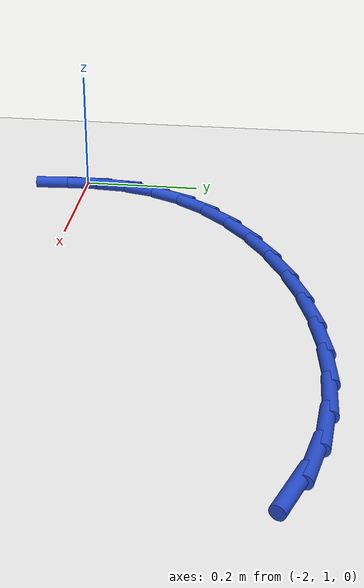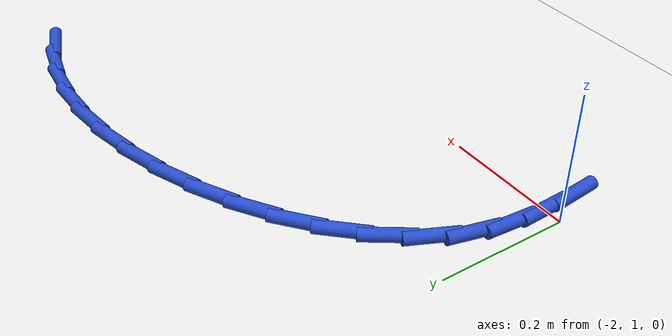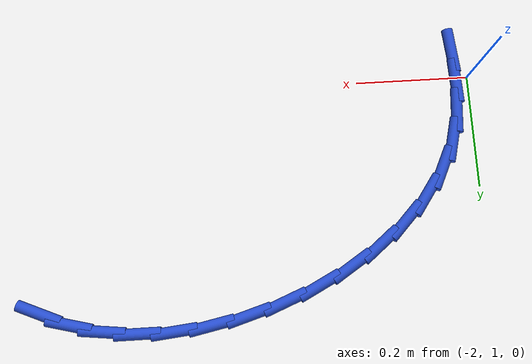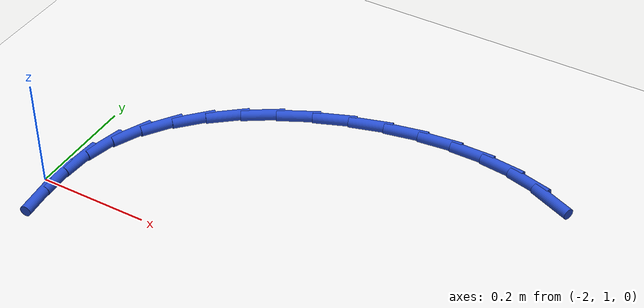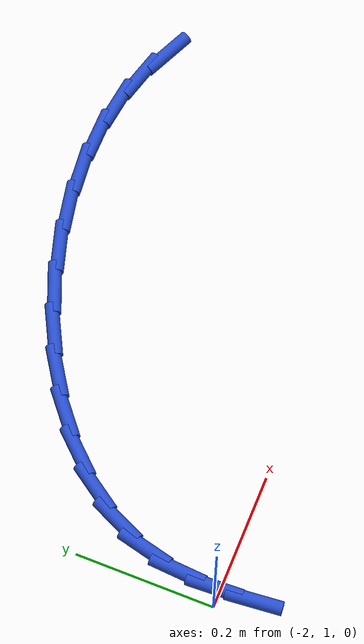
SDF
<sdf version="1.6">
 <world name="default">
  <model name="ground_plane">
   <static>1</static>
   <link name="link">
    <collision name="collision">
     <geometry><plane><normal>0 0 1</normal><size>100 100</size></plane></geometry>
     <surface><friction><ode><mu>100</mu><mu2>50</mu2></ode></friction></surface>
    </collision>
    <visual name="visual">
     <cast_shadows>0</cast_shadows>
     <geometry><plane><normal>0 0 1</normal><size>100 100</size></plane></geometry>
     <material>
      <script><uri>file://media/materials/scripts/gazebo.material</uri><name>Gazebo/WhiteGlow</name></script>
     </material>
    </visual>
   </link>
  </model>
  <model name="line">
   <link name="link_35">
    <pose>-1.228881268460256 1.3752616799969937 0.01 0 1.57 -0.41180955839088135</pose>
    <collision name="collision">
     <geometry><cylinder><radius>0.01</radius><length>0.08</length></cylinder></geometry>
    </collision>
    <visual name="visual">
     <material>
      <script><name>Gazebo/Blue</name><uri>file://media/materials/scripts/gazebo.material</uri></script>
     </material>
     <geometry><cylinder><radius>0.01</radius><length>0.08</length></cylinder></geometry>
    </visual>
   </link>
   <link name="link_36">
    <pose>-1.2794076821355773 1.3973308238242974 0.01 0 1.57 -0.2529647030927741</pose>
    <collision name="collision">
     <geometry><cylinder><radius>0.01</radius><length>0.08</length></cylinder></geometry>
    </collision>
    <visual name="visual">
     <material>
      <script><name>Gazebo/Blue</name><uri>file://media/materials/scripts/gazebo.material</uri></script>
     </material>
     <geometry><cylinder><radius>0.01</radius><length>0.08</length></cylinder></geometry>
    </visual>
   </link>
   <link name="link_37">
    <pose>-1.3349064050537924 1.4116773726326322 0.01 0 1.57 -0.11705845314525713</pose>
    <collision name="collision">
     <geometry><cylinder><radius>0.01</radius><length>0.08</length></cylinder></geometry>
    </collision>
    <visual name="visual">
     <material>
      <script><name>Gazebo/Blue</name><uri>file://media/materials/scripts/gazebo.material</uri></script>
     </material>
     <geometry><cylinder><radius>0.01</radius><length>0.08</length></cylinder></geometry>
    </visual>
   </link>
   <link name="link_38">
    <pose>-1.394219648241005 1.418652377026995 0.01 0 1.57 0.0004052203901564745</pose>
    <collision name="collision">
     <geometry><cylinder><radius>0.01</radius><length>0.08</length></cylinder></geometry>
    </collision>
    <visual name="visual">
     <material>
      <script><name>Gazebo/Blue</name><uri>file://media/materials/scripts/gazebo.material</uri></script>
     </material>
     <geometry><cylinder><radius>0.01</radius><length>0.08</length></cylinder></geometry>
    </visual>
   </link>
   <link name="link_39">
    <pose>-1.4561633278733694 1.4186272761835927 0.01 0 1.57 0.1045825411278735</pose>
    <collision name="collision">
     <geometry><cylinder><radius>0.01</radius><length>0.08</length></cylinder></geometry>
    </collision>
    <visual name="visual">
     <material>
      <script><name>Gazebo/Blue</name><uri>file://media/materials/scripts/gazebo.material</uri></script>
     </material>
     <geometry><cylinder><radius>0.01</radius><length>0.08</length></cylinder></geometry>
    </visual>
   </link>
   <link name="link_40">
    <pose>-1.5195533601270377 1.4119735092786316 0.01 0 1.57 0.20012122598356696</pose>
    <collision name="collision">
     <geometry><cylinder><radius>0.01</radius><length>0.08</length></cylinder></geometry>
    </collision>
    <visual name="visual">
     <material>
      <script><name>Gazebo/Blue</name><uri>file://media/materials/scripts/gazebo.material</uri></script>
     </material>
     <geometry><cylinder><radius>0.01</radius><length>0.08</length></cylinder></geometry>
    </visual>
   </link>
   <link name="link_41">
    <pose>-1.5832056611781642 1.3990625154883178 0.01 0 1.57 0.2911296851606142</pose>
    <collision name="collision">
     <geometry><cylinder><radius>0.01</radius><length>0.08</length></cylinder></geometry>
    </collision>
    <visual name="visual">
     <material>
      <script><name>Gazebo/Blue</name><uri>file://media/materials/scripts/gazebo.material</uri></script>
     </material>
     <geometry><cylinder><radius>0.01</radius><length>0.08</length></cylinder></geometry>
    </visual>
   </link>
   <link name="link_42">
    <pose>-1.6459361472029004 1.380265733988858 0.01 0 1.57 0.38137767752808127</pose>
    <collision name="collision">
     <geometry><cylinder><radius>0.01</radius><length>0.08</length></cylinder></geometry>
    </collision>
    <visual name="visual">
     <material>
      <script><name>Gazebo/Blue</name><uri>file://media/materials/scripts/gazebo.material</uri></script>
     </material>
     <geometry><cylinder><radius>0.01</radius><length>0.08</length></cylinder></geometry>
    </visual>
   </link>
   <link name="link_43">
    <pose>-1.7065607343773994 1.355954603956458 0.01 0 1.57 0.4745647357248217</pose>
    <collision name="collision">
     <geometry><cylinder><radius>0.01</radius><length>0.08</length></cylinder></geometry>
    </collision>
    <visual name="visual">
     <material>
      <script><name>Gazebo/Blue</name><uri>file://media/materials/scripts/gazebo.material</uri></script>
     </material>
     <geometry><cylinder><radius>0.01</radius><length>0.08</length></cylinder></geometry>
    </visual>
   </link>
   <link name="link_44">
    <pose>-1.7638953388778156 1.3265005645673238 0.01 0 1.57 0.5745932325230839</pose>
    <collision name="collision">
     <geometry><cylinder><radius>0.01</radius><length>0.08</length></cylinder></geometry>
    </collision>
    <visual name="visual">
     <material>
      <script><name>Gazebo/Blue</name><uri>file://media/materials/scripts/gazebo.material</uri></script>
     </material>
     <geometry><cylinder><radius>0.01</radius><length>0.08</length></cylinder></geometry>
    </visual>
   </link>
   <link name="link_45">
    <pose>-1.8167558768803003 1.292275054997662 0.01 0 1.57 0.6857981003588236</pose>
    <collision name="collision">
     <geometry><cylinder><radius>0.01</radius><length>0.08</length></cylinder></geometry>
    </collision>
    <visual name="visual">
     <material>
      <script><name>Gazebo/Blue</name><uri>file://media/materials/scripts/gazebo.material</uri></script>
     </material>
     <geometry><cylinder><radius>0.01</radius><length>0.08</length></cylinder></geometry>
    </visual>
   </link>
   <link name="link_46">
    <pose>-1.8639582645610073 1.2536495144236786 0.01 0 1.57 0.8130246761680432</pose>
    <collision name="collision">
     <geometry><cylinder><radius>0.01</radius><length>0.08</length></cylinder></geometry>
    </collision>
    <visual name="visual">
     <material>
      <script><name>Gazebo/Blue</name><uri>file://media/materials/scripts/gazebo.material</uri></script>
     </material>
     <geometry><cylinder><radius>0.01</radius><length>0.08</length></cylinder></geometry>
    </visual>
   </link>
   <link name="link_47">
    <pose>-1.904318418096089 1.21099538202158 0.01 0 1.57 0.9612896526685911</pose>
    <collision name="collision">
     <geometry><cylinder><radius>0.01</radius><length>0.08</length></cylinder></geometry>
    </collision>
    <visual name="visual">
     <material>
      <script><name>Gazebo/Blue</name><uri>file://media/materials/scripts/gazebo.material</uri></script>
     </material>
     <geometry><cylinder><radius>0.01</radius><length>0.08</length></cylinder></geometry>
    </visual>
   </link>
   <link name="link_48">
    <pose>-1.9366522536617 1.1646840969675722 0.01 0 1.57 1.1345306995879232</pose>
    <collision name="collision">
     <geometry><cylinder><radius>0.01</radius><length>0.08</length></cylinder></geometry>
    </collision>
    <visual name="visual">
     <material>
      <script><name>Gazebo/Blue</name><uri>file://media/materials/scripts/gazebo.material</uri></script>
     </material>
     <geometry><cylinder><radius>0.01</radius><length>0.08</length></cylinder></geometry>
    </visual>
   </link>
   <link name="link_49">
    <pose>-1.9597756874339909 1.1150870984378622 0.01 0 1.57 1.330270247468746</pose>
    <collision name="collision">
     <geometry><cylinder><radius>0.01</radius><length>0.08</length></cylinder></geometry>
    </collision>
    <visual name="visual">
     <material>
      <script><name>Gazebo/Blue</name><uri>file://media/materials/scripts/gazebo.material</uri></script>
     </material>
     <geometry><cylinder><radius>0.01</radius><length>0.08</length></cylinder></geometry>
    </visual>
   </link>
   <link name="link_50">
    <pose>-1.9726511391690944 1.0625930187568984 0.01 0 1.57 1.500414735692357</pose>
    <collision name="collision">
     <geometry><cylinder><radius>0.01</radius><length>0.08</length></cylinder></geometry>
    </collision>
    <visual name="visual">
     <material>
      <script><name>Gazebo/Blue</name><uri>file://media/materials/scripts/gazebo.material</uri></script>
     </material>
     <geometry><cylinder><radius>0.01</radius><length>0.08</length></cylinder></geometry>
    </visual>
   </link>
   <link name="link_51">
    <pose>-1.976509937758696 1.0078567614974099 0.01 0 1.57 -1.5326817299557682</pose>
    <collision name="collision">
     <geometry><cylinder><radius>0.01</radius><length>0.08</length></cylinder></geometry>
    </collision>
    <visual name="visual">
     <material>
      <script><name>Gazebo/Blue</name><uri>file://media/materials/scripts/gazebo.material</uri></script>
     </material>
     <geometry><cylinder><radius>0.01</radius><length>0.08</length></cylinder></geometry>
    </visual>
   </link>
   <link name="link_52">
    <pose>-1.97437014484478 0.9517429149446172 0.01 0 1.57 -1.481457273964573</pose>
    <collision name="collision">
     <geometry><cylinder><radius>0.01</radius><length>0.08</length></cylinder></geometry>
    </collision>
    <visual name="visual">
     <material>
      <script><name>Gazebo/Blue</name><uri>file://media/materials/scripts/gazebo.material</uri></script>
     </material>
     <geometry><cylinder><radius>0.01</radius><length>0.08</length></cylinder></geometry>
    </visual>
   </link>
  </model>
 </world>
</sdf>
